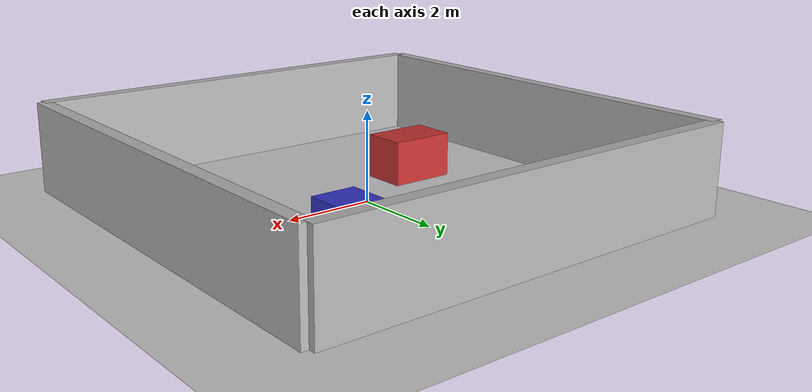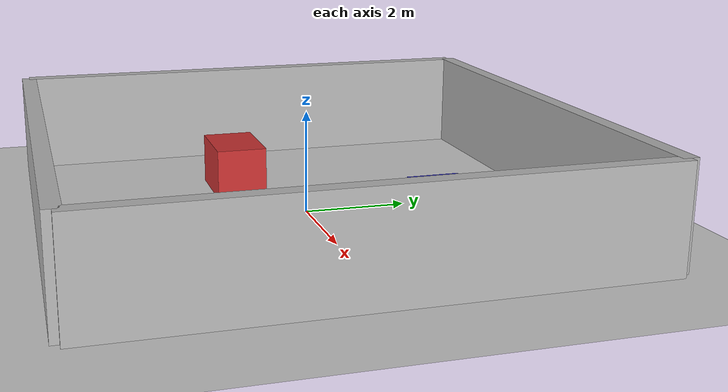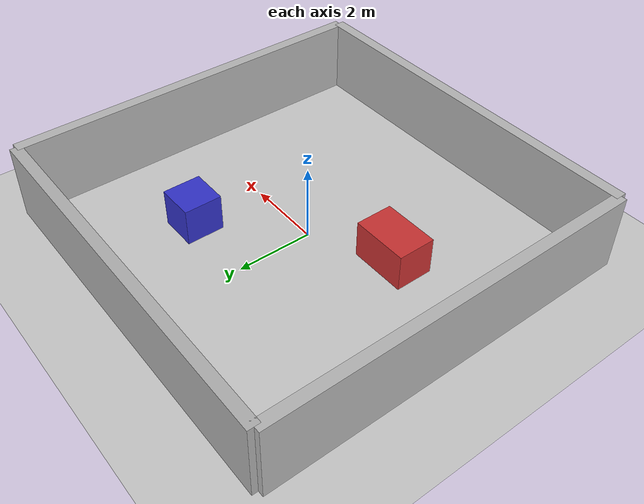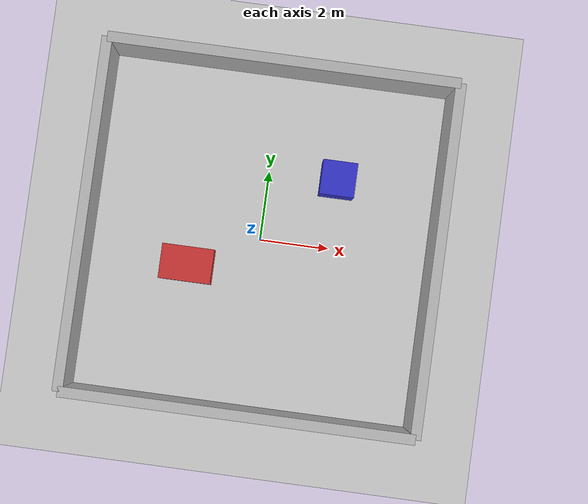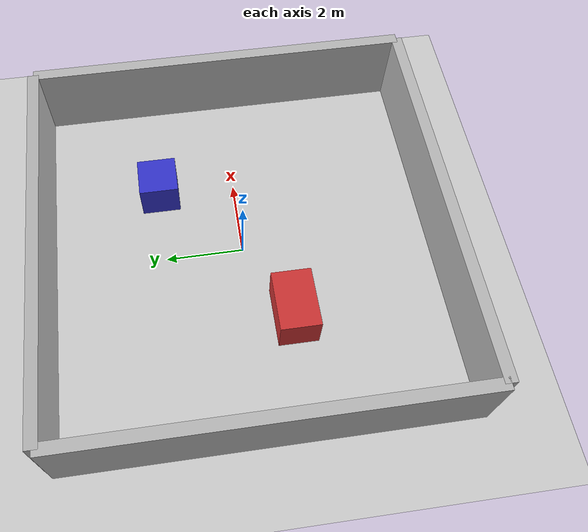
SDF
<sdf version='1.10'>
  <world name='empty'>
    <physics name='1ms' type='ignored'>
      <max_step_size>0.001</max_step_size>
      <real_time_factor>1</real_time_factor>
      <real_time_update_rate>1000</real_time_update_rate>
    </physics>
    <plugin name='gz::sim::systems::Physics' filename='gz-sim-physics-system'/>
    <plugin name='gz::sim::systems::UserCommands' filename='gz-sim-user-commands-system'/>
    <plugin name='gz::sim::systems::SceneBroadcaster' filename='gz-sim-scene-broadcaster-system'/>
    <plugin name='gz::sim::systems::Contact' filename='gz-sim-contact-system'/>
    <gravity>0 0 -9.8000000000000007</gravity>
    <magnetic_field>5.5644999999999998e-06 2.2875799999999999e-05 -4.2388400000000002e-05</magnetic_field>
    <atmosphere type='adiabatic'/>
    <scene>
      <ambient>0.400000006 0.400000006 0.400000006 1</ambient>
      <background>0.699999988 0.699999988 0.699999988 1</background>
      <shadows>true</shadows>
    </scene>
    <model name='ground_plane'>
      <static>true</static>
      <link name='link'>
        <collision name='collision'>
          <geometry>
            <plane>
              <normal>0 0 1</normal>
              <size>100 100</size>
            </plane>
          </geometry>
          <surface>
            <friction>
              <ode/>
            </friction>
            <bounce/>
            <contact/>
          </surface>
        </collision>
        <visual name='visual'>
          <geometry>
            <plane>
              <normal>0 0 1</normal>
              <size>100 100</size>
            </plane>
          </geometry>
          <material>
            <ambient>0.800000012 0.800000012 0.800000012 1</ambient>
            <diffuse>0.800000012 0.800000012 0.800000012 1</diffuse>
            <specular>0.800000012 0.800000012 0.800000012 1</specular>
          </material>
        </visual>
        <pose>0 0 0 0 0 0</pose>
        <inertial>
          <pose>0 0 0 0 0 0</pose>
          <mass>1</mass>
          <inertia>
            <ixx>1</ixx>
            <ixy>0</ixy>
            <ixz>0</ixz>
            <iyy>1</iyy>
            <iyz>0</iyz>
            <izz>1</izz>
          </inertia>
        </inertial>
        <enable_wind>false</enable_wind>
      </link>
      <pose>0 0 0 0 0 0</pose>
      <self_collide>false</self_collide>
    </model>
   <model name="wall1">
      <static>true</static>
      <pose>0 5 1 0 0 0</pose>
      <link name="link">
        <collision name="collision">
          <geometry>
            <box>
              <size>10 0.3 2</size>
            </box>
          </geometry>
        </collision>
        <visual name="visual">
          <geometry>
            <box>
              <size>10 0.3 2</size>
            </box>
          </geometry>
          <material>
            <ambient>0.7 0.7 0.7 1</ambient>
          </material>
        </visual>
      </link>
    </model>

    <!-- حيطة 2 -->
    <model name="wall2">
      <static>true</static>
      <pose>0 -5 1 0 0 0</pose>
      <link name="link">
        <collision name="collision">
          <geometry>
            <box>
              <size>10 0.3 2</size>
            </box>
          </geometry>
        </collision>
        <visual name="visual">
          <geometry>
            <box>
              <size>10 0.3 2</size>
            </box>
          </geometry>
        </visual>
      </link>
    </model>

    <!-- حيطة 3 -->
    <model name="wall3">
      <static>true</static>
      <pose>5 0 1 0 0 1.5707</pose>
      <link name="link">
        <collision name="collision">
          <geometry>
            <box>
              <size>10 0.3 2</size>
            </box>
          </geometry>
        </collision>
        <visual name="visual">
          <geometry>
            <box>
              <size>10 0.3 2</size>
            </box>
          </geometry>
        </visual>
      </link>
    </model>

    <!-- حيطة 4 -->
    <model name="wall4">
      <static>true</static>
      <pose>-5 0 1 0 0 1.5707</pose>
      <link name="link">
        <collision name="collision">
          <geometry>
            <box>
              <size>10 0.3 2</size>
            </box>
          </geometry>
        </collision>
        <visual name="visual">
          <geometry>
            <box>
              <size>10 0.3 2</size>
            </box>
          </geometry>
        </visual>
      </link>
    </model>

    <!-- بوكس 1 -->
    <model name="obstacle1">
      <static>true</static>
      <pose>2 2 0.5 0 0 0</pose>
      <link name="link">
        <collision name="collision">
          <geometry>
            <box>
              <size>1 1 1</size>
            </box>
          </geometry>
        </collision>
        <visual name="visual">
          <geometry>
            <box>
              <size>1 1 1</size>
            </box>
          </geometry>
          <material>
            <ambient>0.2 0.2 0.8 1</ambient>
          </material>
        </visual>
      </link>
    </model>

    <!-- بوكس 2 -->
    <model name="obstacle2">
      <static>true</static>
      <pose>-2 -1 0.5 0 0 0</pose>
      <link name="link">
        <collision name="collision">
          <geometry>
            <box>
              <size>1.5 1 1</size>
            </box>
          </geometry>
        </collision>
        <visual name="visual">
          <geometry>
            <box>
              <size>1.5 1 1</size>
            </box>
          </geometry>
          <material>
            <ambient>0.8 0.2 0.2 1</ambient>
          </material>
        </visual>
      </link>
    </model>
    <light name='sun' type='directional'>
      <pose>0 0 10 0 0 0</pose>
      <cast_shadows>true</cast_shadows>
      <intensity>1</intensity>
      <direction>-0.5 0.10000000000000001 -0.90000000000000002</direction>
      <diffuse>0.800000012 0.800000012 0.800000012 1</diffuse>
      <specular>0.200000003 0.200000003 0.200000003 1</specular>
      <attenuation>
        <range>1000</range>
        <linear>0.01</linear>
        <constant>0.90000000000000002</constant>
        <quadratic>0.001</quadratic>
      </attenuation>
      <spot>
        <inner_angle>0</inner_angle>
        <outer_angle>0</outer_angle>
        <falloff>0</falloff>
      </spot>
    </light>
  </world>
</sdf>
